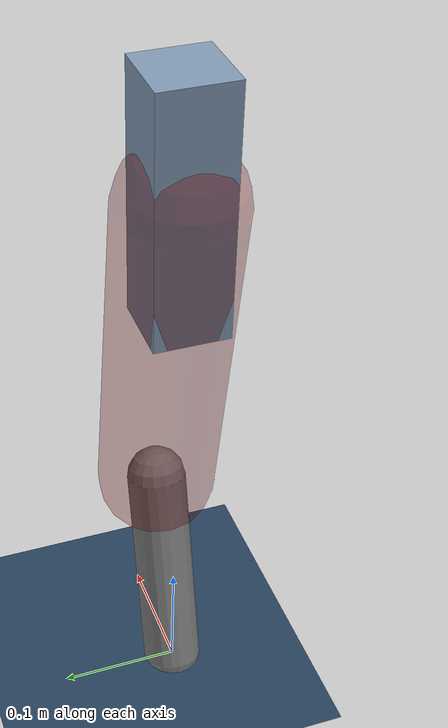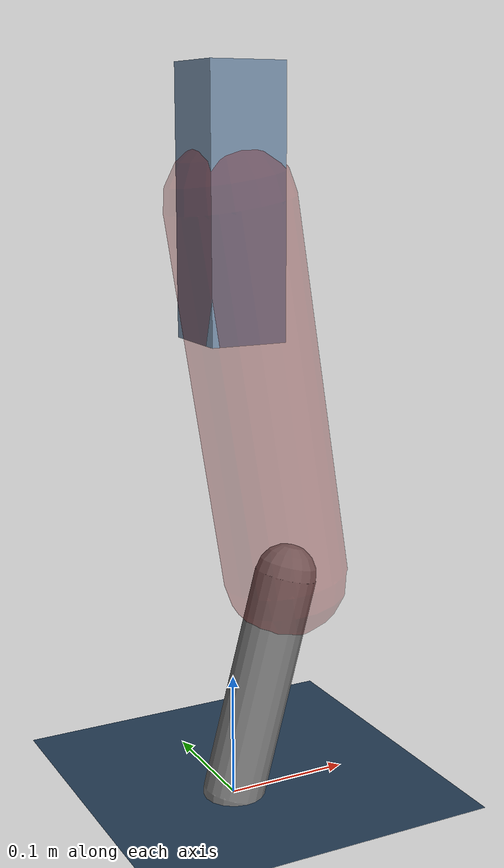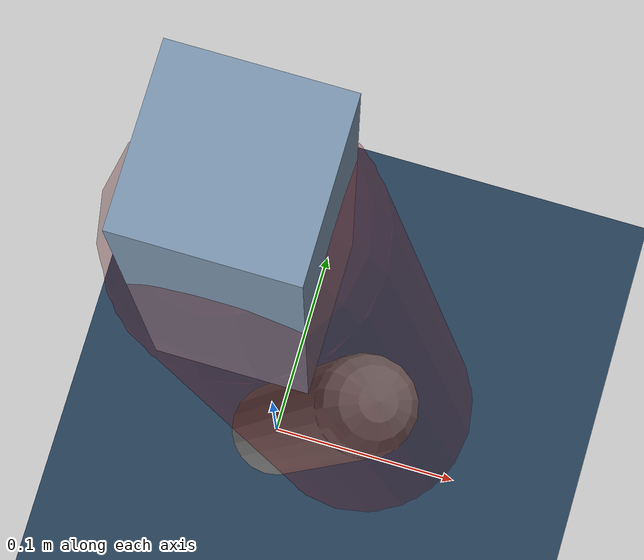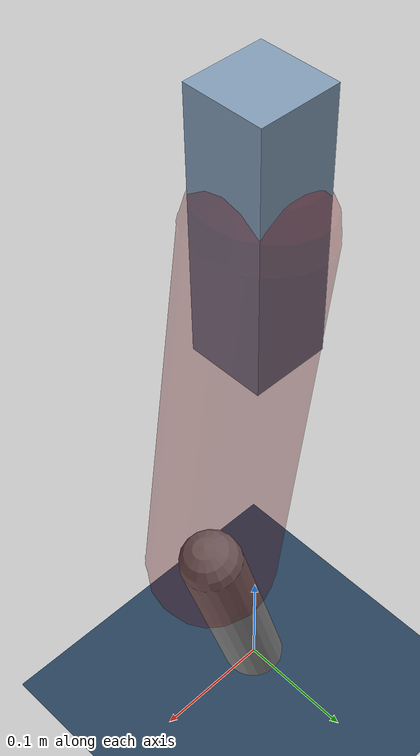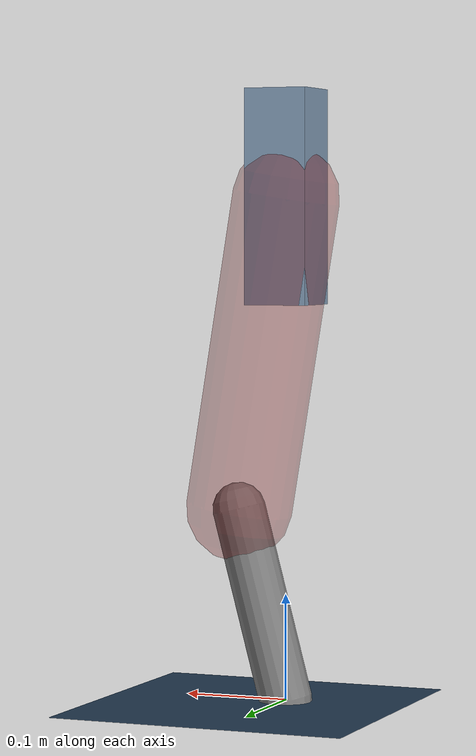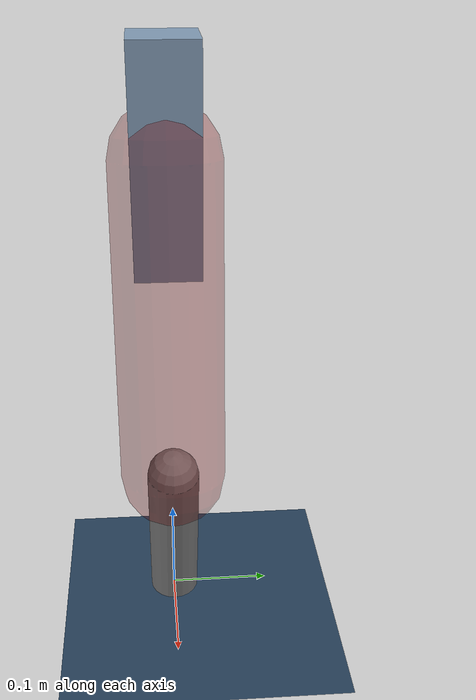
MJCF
<mujoco model="Hopper2D">
	<compiler inertiafromgeom="true" angle="radian" />
	<option timestep="0.001" integrator="implicit" cone="elliptic" solver="Newton" tolerance="1e-10" />

	<default>
		<geom contype="1" conaffinity="1" condim="3" friction="2 0.005 0.0001" solref="0.005 1" />
		<joint limited="true" damping="0.1" />
	</default>

	<asset>
		<texture name="skybox" type="skybox" builtin="gradient" rgb1=".4 .6 .8" rgb2="0 0 0" width="800" height="800" />
		<texture name="grid" type="2d" builtin="checker" rgb1=".1 .2 .3" rgb2=".2 .3 .4" width="300" height="300" mark="edge" markrgb=".2 .3 .4" />
		<material name="ground" texture="grid" texrepeat="1 1" texuniform="true" reflectance="0.1" />
		<material name="leg" rgba="0.5 0.6 0.7 1" />
	</asset>

	<worldbody>

		<geom name="floor" type="plane" size="5 5 0.25" material="ground" />

		<light directional="false" diffuse="0.8 0.8 0.8" specular="0.3 0.3 0.3" pos="0 0 2" dir="0 0 -1" />
		<light mode="targetbodycom" target="base" directional="false" diffuse="0.8 0.8 0.8" specular="0.3 0.3 0.3" pos="0 0 2" dir="0 0 -1" />

		<camera name="fixed" pos="0 -2 1" xyaxes="1 0 0 0 0 1" />
		<camera name="tracking" mode="trackcom" pos="0 -3 1" />

		<body name="root" pos="0 0 0.47163200439076475">
			<joint name="slide_x" type="slide" axis="1 0 0" range="-100 100" />
			<joint name="slide_z" type="slide" axis="0 0 1" range="0 10" />

			<body name="base" pos="0 0 0">
				<geom name="torso" type="box" size="0.03 0.03 0.1" mass="2.239" material="leg" />

				<body name="link1" pos="0 0 0" euler="0 1.4099793660476496 0">
					<joint type="hinge" axis="0 -1 0" pos="0 0 0" name="hinge1" limited="true" range="-3.14 3.14" stiffness="0" damping="0.1" />
					<geom name="thigh" type="capsule" fromto="0 0 0 0.29631041998016017 0 0" size="0.05" rgba="0.5 0 0 0.3" mass="0.9787381339464325" />

					<body name="link2" pos="0.29631041998016017 0 0" euler="0 0.4197229155413302 0">
						<joint type="hinge" axis="0 -1 0" pos="0 0 0" name="hinge2" limited="true" range="-3.14 3.14" stiffness="0" damping="0.1" />
						<geom name="shank" type="capsule" fromto="0 0 0 0.1853215844106046 0 0" size="0.025" mass="0.3884572675284837" />

					</body>
				</body>
			</body>
		</body>
	</worldbody>

	<actuator>
		<motor name="torque1" joint="hinge1" ctrlrange="-68.10715343693937 68.10715343693937" ctrllimited="true" gear="1" />
		<motor name="torque2" joint="hinge2" ctrlrange="-79.370067318588 79.370067318588" ctrllimited="true" gear="1" />
	</actuator>
</mujoco>
